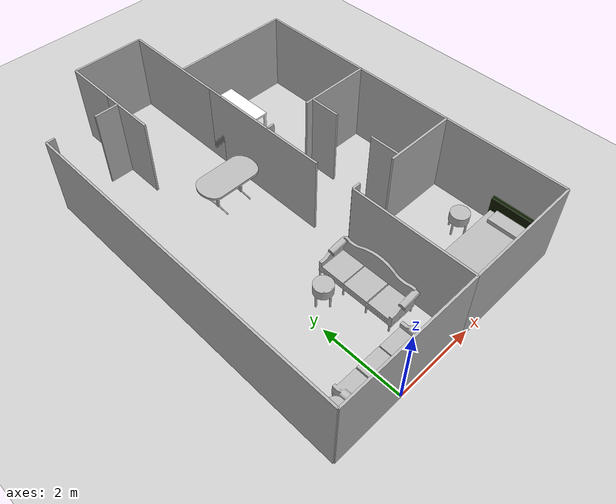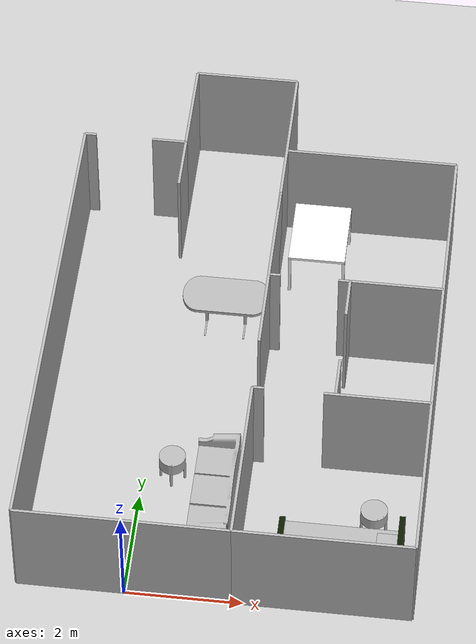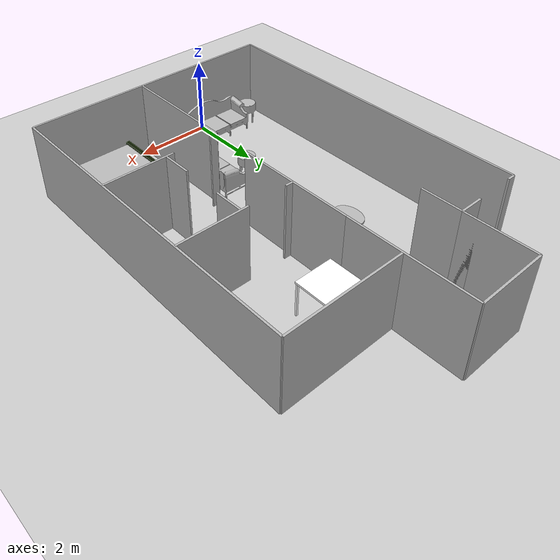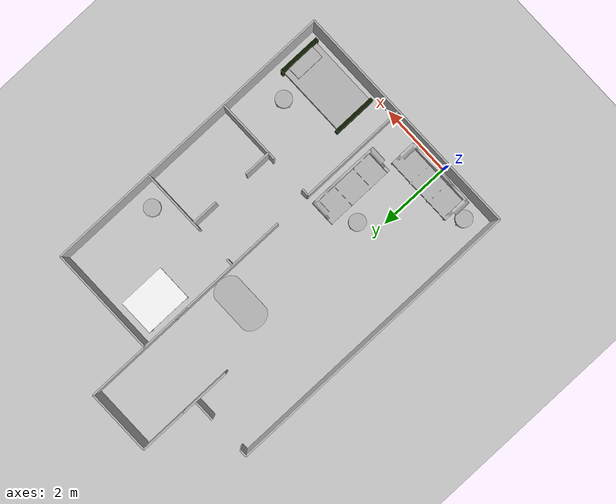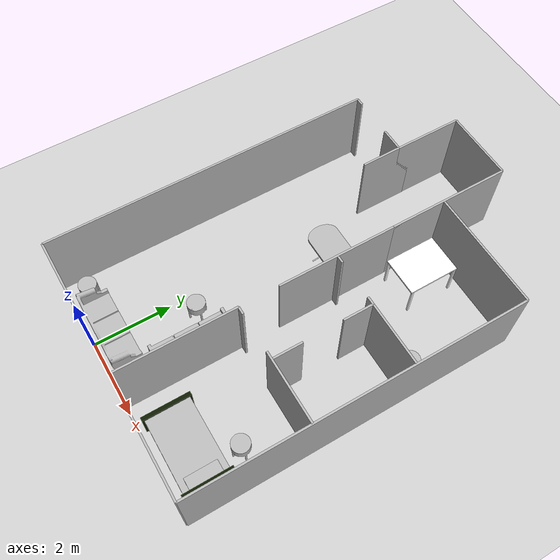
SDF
<sdf version="1.5">
 <world name="myworld">
  <include><uri>model://sun</uri></include>
  <include><uri>model://ground_plane</uri></include>
  <include><uri>model://hri_two_bedrooms</uri></include>
  <include><uri>model://hri_couch</uri><pose>1.25 2 0 0 0 3.1416</pose></include>
  <include><uri>model://hri_couch</uri><pose>0 0.5 0 0 0 1.5708</pose></include>
  <include><uri>model://hri_roundtable</uri><pose>0.5 2.5 0 0 0 0</pose></include>
  <include><uri>model://hri_roundtable</uri><pose>-1.25 0.5 0 0 0 0</pose></include>
  <include><uri>model://hri_dinnertable</uri><pose>1 6 0 0 0 1.5708</pose></include>
  <include><uri>model://hri_bed</uri><pose>3.5 0.75 0 0 0 0</pose></include>
  <include><uri>model://hri_roundtable</uri><pose>4 1.75 0 0 0 0</pose></include>
  <include><uri>model://hri_desk</uri><pose>2.5 7.5 0 0 0 1.5708</pose></include>
  <include><uri>model://hri_roundtable</uri><pose>4.25 6 0 0 0 0</pose></include>
 </world>
</sdf>

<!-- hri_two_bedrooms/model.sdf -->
<sdf version="1.4">
<model name="hri_two_bedrooms">
  <pose>0 0 0 0 0 0</pose>
  <static>true</static>

    <link name="wall1">
      <pose>0 0 1 0 0 0</pose>
      <inertial>
        <mass>1000.0</mass>
        <inertia> <!-- interias are tricky to compute -->
          <!-- http://answers.gazebosim.org/question/4372/the-inertia-matrix-explained/ -->
          <ixx>0.083</ixx>       <!-- for a box: ixx = 0.083 * mass * (y*y + z*z) -->
          <ixy>0.0</ixy>         <!-- for a box: ixy = 0 -->
          <ixz>0.0</ixz>         <!-- for a box: ixz = 0 -->
          <iyy>0.083</iyy>       <!-- for a box: iyy = 0.083 * mass * (x*x + z*z) -->
          <iyz>0.0</iyz>         <!-- for a box: iyz = 0 -->
          <izz>0.083</izz>       <!-- for a box: izz = 0.083 * mass * (x*x + y*y) -->
        </inertia>
      </inertial>
      <collision name="collision">
        <geometry>
          <box>
            <size>3.6    0.0500    2.0000</size>
          </box>
        </geometry>
      </collision>
      <visual name="visual">
        <geometry>
          <box>
            <size>3.6    0.0500    2.0000</size>
          </box>
        </geometry>
      </visual>
    </link>

    <link name="wall2">
      <pose>-1.8 4.2 1 0 0 0</pose>
      <inertial>
        <mass>1000.0</mass>
        <inertia> <!-- interias are tricky to compute -->
          <!-- http://answers.gazebosim.org/question/4372/the-inertia-matrix-explained/ -->
          <ixx>0.083</ixx>       <!-- for a box: ixx = 0.083 * mass * (y*y + z*z) -->
          <ixy>0.0</ixy>         <!-- for a box: ixy = 0 -->
          <ixz>0.0</ixz>         <!-- for a box: ixz = 0 -->
          <iyy>0.083</iyy>       <!-- for a box: iyy = 0.083 * mass * (x*x + z*z) -->
          <iyz>0.0</iyz>         <!-- for a box: iyz = 0 -->
          <izz>0.083</izz>       <!-- for a box: izz = 0.083 * mass * (x*x + y*y) -->
        </inertia>
      </inertial>
      <collision name="collision">
        <geometry>
          <box>
            <size>0.0500    8.4    2.0000</size>
          </box>
        </geometry>
      </collision>
      <visual name="visual">
        <geometry>
          <box>
            <size>0.0500    8.4    2.0000</size>
          </box>
        </geometry>
      </visual>
    </link>

    <link name="wall3">
      <pose>-1.7 8.4 1 0 0 0</pose>
      <inertial>
        <mass>1000.0</mass>
        <inertia> <!-- interias are tricky to compute -->
          <!-- http://answers.gazebosim.org/question/4372/the-inertia-matrix-explained/ -->
          <ixx>0.083</ixx>       <!-- for a box: ixx = 0.083 * mass * (y*y + z*z) -->
          <ixy>0.0</ixy>         <!-- for a box: ixy = 0 -->
          <ixz>0.0</ixz>         <!-- for a box: ixz = 0 -->
          <iyy>0.083</iyy>       <!-- for a box: iyy = 0.083 * mass * (x*x + z*z) -->
          <iyz>0.0</iyz>         <!-- for a box: iyz = 0 -->
          <izz>0.083</izz>       <!-- for a box: izz = 0.083 * mass * (x*x + y*y) -->
        </inertia>
      </inertial>
      <collision name="collision">
        <geometry>
          <box>
            <size>0.2    0.0500    2.0000</size>
          </box>
        </geometry>
      </collision>
      <visual name="visual">
        <geometry>
          <box>
            <size>0.2    0.0500    2.0000</size>
          </box>
        </geometry>
      </visual>
    </link>

    <link name="wall4">
      <pose>-0.3 8.4 1 0 0 0</pose>
      <inertial>
        <mass>1000.0</mass>
        <inertia> <!-- interias are tricky to compute -->
          <!-- http://answers.gazebosim.org/question/4372/the-inertia-matrix-explained/ -->
          <ixx>0.083</ixx>       <!-- for a box: ixx = 0.083 * mass * (y*y + z*z) -->
          <ixy>0.0</ixy>         <!-- for a box: ixy = 0 -->
          <ixz>0.0</ixz>         <!-- for a box: ixz = 0 -->
          <iyy>0.083</iyy>       <!-- for a box: iyy = 0.083 * mass * (x*x + z*z) -->
          <iyz>0.0</iyz>         <!-- for a box: iyz = 0 -->
          <izz>0.083</izz>       <!-- for a box: izz = 0.083 * mass * (x*x + y*y) -->
        </inertia>
      </inertial>
      <collision name="collision">
        <geometry>
          <box>
            <size>0.6    0.0500    2.0000</size>
          </box>
        </geometry>
      </collision>
      <visual name="visual">
        <geometry>
          <box>
            <size>0.6    0.0500    2.0000</size>
          </box>
        </geometry>
      </visual>
    </link>

    <link name="wall5">
      <pose>0 9.25 1 0 0 0</pose>
      <inertial>
        <mass>1000.0</mass>
        <inertia> <!-- interias are tricky to compute -->
          <!-- http://answers.gazebosim.org/question/4372/the-inertia-matrix-explained/ -->
          <ixx>0.083</ixx>       <!-- for a box: ixx = 0.083 * mass * (y*y + z*z) -->
          <ixy>0.0</ixy>         <!-- for a box: ixy = 0 -->
          <ixz>0.0</ixz>         <!-- for a box: ixz = 0 -->
          <iyy>0.083</iyy>       <!-- for a box: iyy = 0.083 * mass * (x*x + z*z) -->
          <iyz>0.0</iyz>         <!-- for a box: iyz = 0 -->
          <izz>0.083</izz>       <!-- for a box: izz = 0.083 * mass * (x*x + y*y) -->
        </inertia>
      </inertial>
      <collision name="collision">
        <geometry>
          <box>
            <size>0.0500    1.7    2.0000</size>
          </box>
        </geometry>
      </collision>
      <visual name="visual">
        <geometry>
          <box>
            <size>0.0500    1.7    2.0000</size>
          </box>
        </geometry>
      </visual>
    </link>

    <link name="wall6">
      <pose>0.9 10.1 1 0 0 0</pose>
      <inertial>
        <mass>1000.0</mass>
        <inertia> <!-- interias are tricky to compute -->
          <!-- http://answers.gazebosim.org/question/4372/the-inertia-matrix-explained/ -->
          <ixx>0.083</ixx>       <!-- for a box: ixx = 0.083 * mass * (y*y + z*z) -->
          <ixy>0.0</ixy>         <!-- for a box: ixy = 0 -->
          <ixz>0.0</ixz>         <!-- for a box: ixz = 0 -->
          <iyy>0.083</iyy>       <!-- for a box: iyy = 0.083 * mass * (x*x + z*z) -->
          <iyz>0.0</iyz>         <!-- for a box: iyz = 0 -->
          <izz>0.083</izz>       <!-- for a box: izz = 0.083 * mass * (x*x + y*y) -->
        </inertia>
      </inertial>
      <collision name="collision">
        <geometry>
          <box>
            <size>1.8    0.0500    2.0000</size>
          </box>
        </geometry>
      </collision>
      <visual name="visual">
        <geometry>
          <box>
            <size>1.8    0.0500    2.0000</size>
          </box>
        </geometry>
      </visual>
    </link>

    <link name="wall7">
      <pose>1.8 8.55 1 0 0 0</pose>
      <inertial>
        <mass>1000.0</mass>
        <inertia> <!-- interias are tricky to compute -->
          <!-- http://answers.gazebosim.org/question/4372/the-inertia-matrix-explained/ -->
          <ixx>0.083</ixx>       <!-- for a box: ixx = 0.083 * mass * (y*y + z*z) -->
          <ixy>0.0</ixy>         <!-- for a box: ixy = 0 -->
          <ixz>0.0</ixz>         <!-- for a box: ixz = 0 -->
          <iyy>0.083</iyy>       <!-- for a box: iyy = 0.083 * mass * (x*x + z*z) -->
          <iyz>0.0</iyz>         <!-- for a box: iyz = 0 -->
          <izz>0.083</izz>       <!-- for a box: izz = 0.083 * mass * (x*x + y*y) -->
        </inertia>
      </inertial>
      <collision name="collision">
        <geometry>
          <box>
            <size>0.0500    3.1    2.0000</size>
          </box>
        </geometry>
      </collision>
      <visual name="visual">
        <geometry>
          <box>
            <size>0.0500    3.1    2.0000</size>
          </box>
        </geometry>
      </visual>
    </link>

    <link name="wall8">
      <pose>3.3 8.4 1 0 0 0</pose>
      <inertial>
        <mass>1000.0</mass>
        <inertia> <!-- interias are tricky to compute -->
          <!-- http://answers.gazebosim.org/question/4372/the-inertia-matrix-explained/ -->
          <ixx>0.083</ixx>       <!-- for a box: ixx = 0.083 * mass * (y*y + z*z) -->
          <ixy>0.0</ixy>         <!-- for a box: ixy = 0 -->
          <ixz>0.0</ixz>         <!-- for a box: ixz = 0 -->
          <iyy>0.083</iyy>       <!-- for a box: iyy = 0.083 * mass * (x*x + z*z) -->
          <iyz>0.0</iyz>         <!-- for a box: iyz = 0 -->
          <izz>0.083</izz>       <!-- for a box: izz = 0.083 * mass * (x*x + y*y) -->
        </inertia>
      </inertial>
      <collision name="collision">
        <geometry>
          <box>
            <size>3.0    0.0500    2.0000</size>
          </box>
        </geometry>
      </collision>
      <visual name="visual">
        <geometry>
          <box>
            <size>3.0    0.0500    2.0000</size>
          </box>
        </geometry>
      </visual>
    </link>

    <link name="wall9">
      <pose>4.8 4.2 1 0 0 0</pose>
      <inertial>
        <mass>1000.0</mass>
        <inertia> <!-- interias are tricky to compute -->
          <!-- http://answers.gazebosim.org/question/4372/the-inertia-matrix-explained/ -->
          <ixx>0.083</ixx>       <!-- for a box: ixx = 0.083 * mass * (y*y + z*z) -->
          <ixy>0.0</ixy>         <!-- for a box: ixy = 0 -->
          <ixz>0.0</ixz>         <!-- for a box: ixz = 0 -->
          <iyy>0.083</iyy>       <!-- for a box: iyy = 0.083 * mass * (x*x + z*z) -->
          <iyz>0.0</iyz>         <!-- for a box: iyz = 0 -->
          <izz>0.083</izz>       <!-- for a box: izz = 0.083 * mass * (x*x + y*y) -->
        </inertia>
      </inertial>
      <collision name="collision">
        <geometry>
          <box>
            <size>0.0500    8.4    2.0000</size>
          </box>
        </geometry>
      </collision>
      <visual name="visual">
        <geometry>
          <box>
            <size>0.0500    8.4    2.0000</size>
          </box>
        </geometry>
      </visual>
    </link>

    <link name="wall10">
      <pose>3.3 0 1 0 0 0</pose>
      <inertial>
        <mass>1000.0</mass>
        <inertia> <!-- interias are tricky to compute -->
          <!-- http://answers.gazebosim.org/question/4372/the-inertia-matrix-explained/ -->
          <ixx>0.083</ixx>       <!-- for a box: ixx = 0.083 * mass * (y*y + z*z) -->
          <ixy>0.0</ixy>         <!-- for a box: ixy = 0 -->
          <ixz>0.0</ixz>         <!-- for a box: ixz = 0 -->
          <iyy>0.083</iyy>       <!-- for a box: iyy = 0.083 * mass * (x*x + z*z) -->
          <iyz>0.0</iyz>         <!-- for a box: iyz = 0 -->
          <izz>0.083</izz>       <!-- for a box: izz = 0.083 * mass * (x*x + y*y) -->
        </inertia>
      </inertial>
      <collision name="collision">
        <geometry>
          <box>
            <size>3.0    0.0500    2.0000</size>
          </box>
        </geometry>
      </collision>
      <visual name="visual">
        <geometry>
          <box>
            <size>3.0    0.0500    2.0000</size>
          </box>
        </geometry>
      </visual>
    </link>

    <link name="wall11">
      <pose>1.8 1.5 1 0 0 0</pose>
      <inertial>
        <mass>1000.0</mass>
        <inertia> <!-- interias are tricky to compute -->
          <!-- http://answers.gazebosim.org/question/4372/the-inertia-matrix-explained/ -->
          <ixx>0.083</ixx>       <!-- for a box: ixx = 0.083 * mass * (y*y + z*z) -->
          <ixy>0.0</ixy>         <!-- for a box: ixy = 0 -->
          <ixz>0.0</ixz>         <!-- for a box: ixz = 0 -->
          <iyy>0.083</iyy>       <!-- for a box: iyy = 0.083 * mass * (x*x + z*z) -->
          <iyz>0.0</iyz>         <!-- for a box: iyz = 0 -->
          <izz>0.083</izz>       <!-- for a box: izz = 0.083 * mass * (x*x + y*y) -->
        </inertia>
      </inertial>
      <collision name="collision">
        <geometry>
          <box>
            <size>0.0500    3.0    2.0000</size>
          </box>
        </geometry>
      </collision>
      <visual name="visual">
        <geometry>
          <box>
            <size>0.0500    3.0    2.0000</size>
          </box>
        </geometry>
      </visual>
    </link>

    <link name="wall12">
      <pose>1.8 5.7 1 0 0 0</pose>
      <inertial>
        <mass>1000.0</mass>
        <inertia> <!-- interias are tricky to compute -->
          <!-- http://answers.gazebosim.org/question/4372/the-inertia-matrix-explained/ -->
          <ixx>0.083</ixx>       <!-- for a box: ixx = 0.083 * mass * (y*y + z*z) -->
          <ixy>0.0</ixy>         <!-- for a box: ixy = 0 -->
          <ixz>0.0</ixz>         <!-- for a box: ixz = 0 -->
          <iyy>0.083</iyy>       <!-- for a box: iyy = 0.083 * mass * (x*x + z*z) -->
          <iyz>0.0</iyz>         <!-- for a box: iyz = 0 -->
          <izz>0.083</izz>       <!-- for a box: izz = 0.083 * mass * (x*x + y*y) -->
        </inertia>
      </inertial>
      <collision name="collision">
        <geometry>
          <box>
            <size>0.0500    3.4    2.0000</size>
          </box>
        </geometry>
      </collision>
      <visual name="visual">
        <geometry>
          <box>
            <size>0.0500    3.4    2.0000</size>
          </box>
        </geometry>
      </visual>
    </link>

    <link name="wall13">
      <pose>1.9 5.5 1 0 0 0</pose>
      <inertial>
        <mass>1000.0</mass>
        <inertia> <!-- interias are tricky to compute -->
          <!-- http://answers.gazebosim.org/question/4372/the-inertia-matrix-explained/ -->
          <ixx>0.083</ixx>       <!-- for a box: ixx = 0.083 * mass * (y*y + z*z) -->
          <ixy>0.0</ixy>         <!-- for a box: ixy = 0 -->
          <ixz>0.0</ixz>         <!-- for a box: ixz = 0 -->
          <iyy>0.083</iyy>       <!-- for a box: iyy = 0.083 * mass * (x*x + z*z) -->
          <iyz>0.0</iyz>         <!-- for a box: iyz = 0 -->
          <izz>0.083</izz>       <!-- for a box: izz = 0.083 * mass * (x*x + y*y) -->
        </inertia>
      </inertial>
      <collision name="collision">
        <geometry>
          <box>
            <size>0.2    0.0500    2.0000</size>
          </box>
        </geometry>
      </collision>
      <visual name="visual">
        <geometry>
          <box>
            <size>0.2    0.0500    2.0000</size>
          </box>
        </geometry>
      </visual>
    </link>

    <link name="wall14">
      <pose>3.9 5.5 1 0 0 0</pose>
      <inertial>
        <mass>1000.0</mass>
        <inertia> <!-- interias are tricky to compute -->
          <!-- http://answers.gazebosim.org/question/4372/the-inertia-matrix-explained/ -->
          <ixx>0.083</ixx>       <!-- for a box: ixx = 0.083 * mass * (y*y + z*z) -->
          <ixy>0.0</ixy>         <!-- for a box: ixy = 0 -->
          <ixz>0.0</ixz>         <!-- for a box: ixz = 0 -->
          <iyy>0.083</iyy>       <!-- for a box: iyy = 0.083 * mass * (x*x + z*z) -->
          <iyz>0.0</iyz>         <!-- for a box: iyz = 0 -->
          <izz>0.083</izz>       <!-- for a box: izz = 0.083 * mass * (x*x + y*y) -->
        </inertia>
      </inertial>
      <collision name="collision">
        <geometry>
          <box>
            <size>1.8    0.0500    2.0000</size>
          </box>
        </geometry>
      </collision>
      <visual name="visual">
        <geometry>
          <box>
            <size>1.8    0.0500    2.0000</size>
          </box>
        </geometry>
      </visual>
    </link>

    <link name="wall15">
      <pose>1.9 3 1 0 0 0</pose>
      <inertial>
        <mass>1000.0</mass>
        <inertia> <!-- interias are tricky to compute -->
          <!-- http://answers.gazebosim.org/question/4372/the-inertia-matrix-explained/ -->
          <ixx>0.083</ixx>       <!-- for a box: ixx = 0.083 * mass * (y*y + z*z) -->
          <ixy>0.0</ixy>         <!-- for a box: ixy = 0 -->
          <ixz>0.0</ixz>         <!-- for a box: ixz = 0 -->
          <iyy>0.083</iyy>       <!-- for a box: iyy = 0.083 * mass * (x*x + z*z) -->
          <iyz>0.0</iyz>         <!-- for a box: iyz = 0 -->
          <izz>0.083</izz>       <!-- for a box: izz = 0.083 * mass * (x*x + y*y) -->
        </inertia>
      </inertial>
      <collision name="collision">
        <geometry>
          <box>
            <size>0.2    0.0500    2.0000</size>
          </box>
        </geometry>
      </collision>
      <visual name="visual">
        <geometry>
          <box>
            <size>0.2    0.0500    2.0000</size>
          </box>
        </geometry>
      </visual>
    </link>

    <link name="wall16">
      <pose>3.9 3 1 0 0 0</pose>
      <inertial>
        <mass>1000.0</mass>
        <inertia> <!-- interias are tricky to compute -->
          <!-- http://answers.gazebosim.org/question/4372/the-inertia-matrix-explained/ -->
          <ixx>0.083</ixx>       <!-- for a box: ixx = 0.083 * mass * (y*y + z*z) -->
          <ixy>0.0</ixy>         <!-- for a box: ixy = 0 -->
          <ixz>0.0</ixz>         <!-- for a box: ixz = 0 -->
          <iyy>0.083</iyy>       <!-- for a box: iyy = 0.083 * mass * (x*x + z*z) -->
          <iyz>0.0</iyz>         <!-- for a box: iyz = 0 -->
          <izz>0.083</izz>       <!-- for a box: izz = 0.083 * mass * (x*x + y*y) -->
        </inertia>
      </inertial>
      <collision name="collision">
        <geometry>
          <box>
            <size>1.8    0.0500    2.0000</size>
          </box>
        </geometry>
      </collision>
      <visual name="visual">
        <geometry>
          <box>
            <size>1.8    0.0500    2.0000</size>
          </box>
        </geometry>
      </visual>
    </link>

    <link name="wall17">
      <pose>3.9 3 1 0 0 0</pose>
      <inertial>
        <mass>1000.0</mass>
        <inertia> <!-- interias are tricky to compute -->
          <!-- http://answers.gazebosim.org/question/4372/the-inertia-matrix-explained/ -->
          <ixx>0.083</ixx>       <!-- for a box: ixx = 0.083 * mass * (y*y + z*z) -->
          <ixy>0.0</ixy>         <!-- for a box: ixy = 0 -->
          <ixz>0.0</ixz>         <!-- for a box: ixz = 0 -->
          <iyy>0.083</iyy>       <!-- for a box: iyy = 0.083 * mass * (x*x + z*z) -->
          <iyz>0.0</iyz>         <!-- for a box: iyz = 0 -->
          <izz>0.083</izz>       <!-- for a box: izz = 0.083 * mass * (x*x + y*y) -->
        </inertia>
      </inertial>
      <collision name="collision">
        <geometry>
          <box>
            <size>1.8    0.0500    2.0000</size>
          </box>
        </geometry>
      </collision>
      <visual name="visual">
        <geometry>
          <box>
            <size>1.8    0.0500    2.0000</size>
          </box>
        </geometry>
      </visual>
    </link>

    <link name="wall18">
      <pose>3.2 5.125 1 0 0 0</pose>
      <inertial>
        <mass>1000.0</mass>
        <inertia> <!-- interias are tricky to compute -->
          <!-- http://answers.gazebosim.org/question/4372/the-inertia-matrix-explained/ -->
          <ixx>0.083</ixx>       <!-- for a box: ixx = 0.083 * mass * (y*y + z*z) -->
          <ixy>0.0</ixy>         <!-- for a box: ixy = 0 -->
          <ixz>0.0</ixz>         <!-- for a box: ixz = 0 -->
          <iyy>0.083</iyy>       <!-- for a box: iyy = 0.083 * mass * (x*x + z*z) -->
          <iyz>0.0</iyz>         <!-- for a box: iyz = 0 -->
          <izz>0.083</izz>       <!-- for a box: izz = 0.083 * mass * (x*x + y*y) -->
        </inertia>
      </inertial>
      <collision name="collision">
        <geometry>
          <box>
            <size>0.0500    0.75    2.0000</size>
          </box>
        </geometry>
      </collision>
      <visual name="visual">
        <geometry>
          <box>
            <size>0.0500    0.75    2.0000</size>
          </box>
        </geometry>
      </visual>
    </link>

    <link name="wall19">
      <pose>3.2 3.375 1 0 0 0</pose>
      <inertial>
        <mass>1000.0</mass>
        <inertia> <!-- interias are tricky to compute -->
          <!-- http://answers.gazebosim.org/question/4372/the-inertia-matrix-explained/ -->
          <ixx>0.083</ixx>       <!-- for a box: ixx = 0.083 * mass * (y*y + z*z) -->
          <ixy>0.0</ixy>         <!-- for a box: ixy = 0 -->
          <ixz>0.0</ixz>         <!-- for a box: ixz = 0 -->
          <iyy>0.083</iyy>       <!-- for a box: iyy = 0.083 * mass * (x*x + z*z) -->
          <iyz>0.0</iyz>         <!-- for a box: iyz = 0 -->
          <izz>0.083</izz>       <!-- for a box: izz = 0.083 * mass * (x*x + y*y) -->
        </inertia>
      </inertial>
      <collision name="collision">
        <geometry>
          <box>
            <size>0.0500    0.75    2.0000</size>
          </box>
        </geometry>
      </collision>
      <visual name="visual">
        <geometry>
          <box>
            <size>0.0500    0.75    2.0000</size>
          </box>
        </geometry>
      </visual>
    </link>

    <link name="wall20">
      <pose>0 8.1 1 0 0 0</pose>
      <inertial>
        <mass>1000.0</mass>
        <inertia> <!-- interias are tricky to compute -->
          <!-- http://answers.gazebosim.org/question/4372/the-inertia-matrix-explained/ -->
          <ixx>0.083</ixx>       <!-- for a box: ixx = 0.083 * mass * (y*y + z*z) -->
          <ixy>0.0</ixy>         <!-- for a box: ixy = 0 -->
          <ixz>0.0</ixz>         <!-- for a box: ixz = 0 -->
          <iyy>0.083</iyy>       <!-- for a box: iyy = 0.083 * mass * (x*x + z*z) -->
          <iyz>0.0</iyz>         <!-- for a box: iyz = 0 -->
          <izz>0.083</izz>       <!-- for a box: izz = 0.083 * mass * (x*x + y*y) -->
        </inertia>
      </inertial>
      <collision name="collision">
        <geometry>
          <box>
            <size>0.0500    1.4    2.0000</size>
          </box>
        </geometry>
      </collision>
      <visual name="visual">
        <geometry>
          <box>
            <size>0.0500    1.4    2.0000</size>
          </box>
        </geometry>
      </visual>
    </link>

  </model>
</sdf>

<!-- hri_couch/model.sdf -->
<sdf version="1.4">
<model name="couch">
  <pose>0 0 0 0 0 0</pose>
  <static>true</static>
    <link name="link">
      <pose>0 0 0 0 0 0</pose>
      <inertial>
        <mass>1.0</mass>
        <inertia> <!-- interias are tricky to compute -->
          <!-- http://answers.gazebosim.org/question/4372/the-inertia-matrix-explained/ -->
          <ixx>0.083</ixx>       <!-- for a box: ixx = 0.083 * mass * (y*y + z*z) -->
          <ixy>0.0</ixy>         <!-- for a box: ixy = 0 -->
          <ixz>0.0</ixz>         <!-- for a box: ixz = 0 -->
          <iyy>0.083</iyy>       <!-- for a box: iyy = 0.083 * mass * (x*x + z*z) -->
          <iyz>0.0</iyz>         <!-- for a box: iyz = 0 -->
          <izz>0.083</izz>       <!-- for a box: izz = 0.083 * mass * (x*x + y*y) -->
        </inertia>
      </inertial>
      <collision name="collision">
	<pose>0 0 0 1.5708 0 0</pose>
        <geometry>
	  <mesh>
	    <uri>model://hri_couch/meshes/couch.dae</uri>
	    <scale>1 1 1</scale>
	  </mesh>
        </geometry>
      </collision>
      <visual name="visual">
	<pose>0 0 0 1.5708 0 0</pose>
        <geometry>
	  <mesh>
	    <uri>model://hri_couch/meshes/couch.dae</uri>
	    <scale>1 1 1</scale>
	  </mesh>
        </geometry>
      </visual>
    </link>
  </model>
</sdf>

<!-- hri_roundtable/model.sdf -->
<sdf version="1.4">
<model name="round table">
  <pose>0 0 0 0 0 0</pose>
  <static>true</static>
    <link name="link">
      <pose>0 0 0 0 0 0</pose>
      <inertial>
        <mass>1.0</mass>
        <inertia> <!-- interias are tricky to compute -->
          <!-- http://answers.gazebosim.org/question/4372/the-inertia-matrix-explained/ -->
          <ixx>0.083</ixx>       <!-- for a box: ixx = 0.083 * mass * (y*y + z*z) -->
          <ixy>0.0</ixy>         <!-- for a box: ixy = 0 -->
          <ixz>0.0</ixz>         <!-- for a box: ixz = 0 -->
          <iyy>0.083</iyy>       <!-- for a box: iyy = 0.083 * mass * (x*x + z*z) -->
          <iyz>0.0</iyz>         <!-- for a box: iyz = 0 -->
          <izz>0.083</izz>       <!-- for a box: izz = 0.083 * mass * (x*x + y*y) -->
        </inertia>
      </inertial>
      <collision name="collision">
	<pose>0 0 0 1.5708 0 0</pose>
        <geometry>
	  <mesh>
	    <uri>model://hri_roundtable/meshes/roundtable.dae</uri>
	    <scale>1 1 1</scale>
	  </mesh>
        </geometry>
      </collision>
      <visual name="visual">
	<pose>0 0 0 1.5708 0 0</pose>
        <geometry>
	  <mesh>
	    <uri>model://hri_roundtable/meshes/roundtable.dae</uri>
	    <scale>1 1 1</scale>
	  </mesh>
        </geometry>
      </visual>
    </link>
  </model>
</sdf>

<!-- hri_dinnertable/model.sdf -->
<sdf version="1.4">
<model name="dinner table">
  <pose>0 0 0 0 0 0</pose>
  <static>true</static>
    <link name="link">
      <pose>0 0 0 0 0 0</pose>
      <inertial>
        <mass>1.0</mass>
        <inertia> <!-- interias are tricky to compute -->
          <!-- http://answers.gazebosim.org/question/4372/the-inertia-matrix-explained/ -->
          <ixx>0.083</ixx>       <!-- for a box: ixx = 0.083 * mass * (y*y + z*z) -->
          <ixy>0.0</ixy>         <!-- for a box: ixy = 0 -->
          <ixz>0.0</ixz>         <!-- for a box: ixz = 0 -->
          <iyy>0.083</iyy>       <!-- for a box: iyy = 0.083 * mass * (x*x + z*z) -->
          <iyz>0.0</iyz>         <!-- for a box: iyz = 0 -->
          <izz>0.083</izz>       <!-- for a box: izz = 0.083 * mass * (x*x + y*y) -->
        </inertia>
      </inertial>
      <collision name="collision">
	<pose>0 0 0 1.5708 0 0</pose>
        <geometry>
	  <mesh>
	    <uri>model://hri_dinnertable/meshes/dinnertable.dae</uri>
	    <scale>1 1 1</scale>
	  </mesh>
        </geometry>
      </collision>
      <visual name="visual">
	<pose>0 0 0 1.5708 0 0</pose>
        <geometry>
	  <mesh>
	    <uri>model://hri_dinnertable/meshes/dinnertable.dae</uri>
	    <scale>1 1 1</scale>
	  </mesh>
        </geometry>
      </visual>
    </link>
  </model>
</sdf>

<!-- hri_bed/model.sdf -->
<sdf version="1.5">
<model name="bed">
  <static>true</static>
    <link name="link">
      <pose>0 0 0.6 0 0 0</pose>
      <inertial>
        <mass>1.0</mass>
        <inertia> <!-- interias are tricky to compute -->
          <!-- http://answers.gazebosim.org/question/4372/the-inertia-matrix-explained/ -->
          <ixx>0.083</ixx>       <!-- for a box: ixx = 0.083 * mass * (y*y + z*z) -->
          <ixy>0.0</ixy>         <!-- for a box: ixy = 0 -->
          <ixz>0.0</ixz>         <!-- for a box: ixz = 0 -->
          <iyy>0.083</iyy>       <!-- for a box: iyy = 0.083 * mass * (x*x + z*z) -->
          <iyz>0.0</iyz>         <!-- for a box: iyz = 0 -->
          <izz>0.083</izz>       <!-- for a box: izz = 0.083 * mass * (x*x + y*y) -->
        </inertia>
      </inertial>
      <collision name="collision">
        <geometry>
          <box>
            <size>2.0    1.1    0.10</size>
          </box>
        </geometry>
      </collision>
      <visual name="visual">
        <geometry>
          <box>
            <size>2.0    1.1    0.10</size>
          </box>
        </geometry>
      </visual>
    </link>

    <link name="link2">
      <pose>0 0 0.45 0 0 0</pose>
      <inertial>
        <mass>1.0</mass>
        <inertia> <!-- interias are tricky to compute -->
          <!-- http://answers.gazebosim.org/question/4372/the-inertia-matrix-explained/ -->
          <ixx>0.083</ixx>       <!-- for a box: ixx = 0.083 * mass * (y*y + z*z) -->
          <ixy>0.0</ixy>         <!-- for a box: ixy = 0 -->
          <ixz>0.0</ixz>         <!-- for a box: ixz = 0 -->
          <iyy>0.083</iyy>       <!-- for a box: iyy = 0.083 * mass * (x*x + z*z) -->
          <iyz>0.0</iyz>         <!-- for a box: iyz = 0 -->
          <izz>0.083</izz>       <!-- for a box: izz = 0.083 * mass * (x*x + y*y) -->
        </inertia>
      </inertial>
      <collision name="collision">
        <geometry>
          <box>
            <size>2.0    1.1    0.20</size>
          </box>
        </geometry>
      </collision>
      <visual name="visual">
        <geometry>
          <box>
            <size>2.0    1.1    0.20</size>
          </box>
        </geometry>
	<material>
	  <ambient>0.25 0 0 1</ambient>
	  <diffuse>0.05 0.1 0 1</diffuse>
	  <specular>0.1 0.1 0.1 1</specular>
	  <emissive>0 0 0 0</emissive>
	</material>
      </visual>
    </link>

    <link name="link3">
      <pose>1 0 0.5 0 0 0</pose>
      <inertial>
        <mass>1.0</mass>
        <inertia> <!-- interias are tricky to compute -->
          <!-- http://answers.gazebosim.org/question/4372/the-inertia-matrix-explained/ -->
          <ixx>0.083</ixx>       <!-- for a box: ixx = 0.083 * mass * (y*y + z*z) -->
          <ixy>0.0</ixy>         <!-- for a box: ixy = 0 -->
          <ixz>0.0</ixz>         <!-- for a box: ixz = 0 -->
          <iyy>0.083</iyy>       <!-- for a box: iyy = 0.083 * mass * (x*x + z*z) -->
          <iyz>0.0</iyz>         <!-- for a box: iyz = 0 -->
          <izz>0.083</izz>       <!-- for a box: izz = 0.083 * mass * (x*x + y*y) -->
        </inertia>
      </inertial>
      <collision name="collision">
        <geometry>
          <box>
            <size>0.1    1.2    1.0</size>
          </box>
        </geometry>
      </collision>
      <visual name="visual">
        <geometry>
          <box>
            <size>0.1    1.2    1.0</size>
          </box>
        </geometry>
	<material>
	  <ambient>0.25 0 0 1</ambient>
	  <diffuse>0.05 0.1 0 1</diffuse>
	  <specular>0.1 0.1 0.1 1</specular>
	  <emissive>0 0 0 0</emissive>
	</material>
      </visual>
    </link>

    <link name="link4">
      <pose>-1 0 0.35 0 0 0</pose>
      <inertial>
        <mass>1.0</mass>
        <inertia> <!-- interias are tricky to compute -->
          <!-- http://answers.gazebosim.org/question/4372/the-inertia-matrix-explained/ -->
          <ixx>0.083</ixx>       <!-- for a box: ixx = 0.083 * mass * (y*y + z*z) -->
          <ixy>0.0</ixy>         <!-- for a box: ixy = 0 -->
          <ixz>0.0</ixz>         <!-- for a box: ixz = 0 -->
          <iyy>0.083</iyy>       <!-- for a box: iyy = 0.083 * mass * (x*x + z*z) -->
          <iyz>0.0</iyz>         <!-- for a box: iyz = 0 -->
          <izz>0.083</izz>       <!-- for a box: izz = 0.083 * mass * (x*x + y*y) -->
        </inertia>
      </inertial>
      <collision name="collision">
        <geometry>
          <box>
            <size>0.1    1.2    0.70</size>
          </box>
        </geometry>
      </collision>
      <visual name="visual">
        <geometry>
          <box>
            <size>0.1    1.2    0.70</size>
          </box>
        </geometry>
	<material>
	  <ambient>0.25 0 0 1</ambient>
	  <diffuse>0.05 0.1 0 1</diffuse>
	  <specular>0.1 0.1 0.1 1</specular>
	  <emissive>0 0 0 0</emissive>
	</material>
      </visual>
    </link>

    <link name="link5">
      <pose>0.80 0 0.7 0 0 0</pose>
      <inertial>
        <mass>1.0</mass>
        <inertia> <!-- interias are tricky to compute -->
          <!-- http://answers.gazebosim.org/question/4372/the-inertia-matrix-explained/ -->
          <ixx>0.083</ixx>       <!-- for a box: ixx = 0.083 * mass * (y*y + z*z) -->
          <ixy>0.0</ixy>         <!-- for a box: ixy = 0 -->
          <ixz>0.0</ixz>         <!-- for a box: ixz = 0 -->
          <iyy>0.083</iyy>       <!-- for a box: iyy = 0.083 * mass * (x*x + z*z) -->
          <iyz>0.0</iyz>         <!-- for a box: iyz = 0 -->
          <izz>0.083</izz>       <!-- for a box: izz = 0.083 * mass * (x*x + y*y) -->
        </inertia>
      </inertial>
      <collision name="collision">
        <geometry>
          <box>
            <size>0.4    0.8    0.10</size>
          </box>
        </geometry>
      </collision>
      <visual name="visual">
        <geometry>
          <box>
            <size>0.4    0.8    0.10</size>
          </box>
        </geometry>
      </visual>
    </link>

  </model>
</sdf>

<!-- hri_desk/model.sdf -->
<sdf version="1.4">
<model name="hri_desk">
  <pose>0 0 0 0 0 0</pose>
  <static>true</static>

    <link name="wall1">
      <pose>0 0 0.885 0 0 0</pose>
      <inertial>
        <mass>1000.0</mass>
        <inertia> <!-- interias are tricky to compute -->
          <!-- http://answers.gazebosim.org/question/4372/the-inertia-matrix-explained/ -->
          <ixx>0.083</ixx>       <!-- for a box: ixx = 0.083 * mass * (y*y + z*z) -->
          <ixy>0.0</ixy>         <!-- for a box: ixy = 0 -->
          <ixz>0.0</ixz>         <!-- for a box: ixz = 0 -->
          <iyy>0.083</iyy>       <!-- for a box: iyy = 0.083 * mass * (x*x + z*z) -->
          <iyz>0.0</iyz>         <!-- for a box: iyz = 0 -->
          <izz>0.083</izz>       <!-- for a box: izz = 0.083 * mass * (x*x + y*y) -->
        </inertia>
      </inertial>
      <collision name="collision">
        <geometry>
          <box>
            <size>1.3    1.0    0.05</size>
          </box>
        </geometry>
      </collision>
      <visual name="visual">
        <geometry>
          <box>
            <size>1.3    1.0    0.05</size>
          </box>
        </geometry>
	<material>
          <ambient>0.5 0.5 0.3 1</ambient>
          <diffuse>1 1 1 1</diffuse>
          <specular>0.1 0.1 0.1 1</specular>
          <emissive>0 0 0 0</emissive>
        </material>
      </visual>
    </link>

    <link name="wall2">
      <pose>0.6    0.475    0.43 0 0 0</pose>
      <inertial>
        <mass>1000.0</mass>
        <inertia> <!-- interias are tricky to compute -->
          <!-- http://answers.gazebosim.org/question/4372/the-inertia-matrix-explained/ -->
          <ixx>0.083</ixx>       <!-- for a box: ixx = 0.083 * mass * (y*y + z*z) -->
          <ixy>0.0</ixy>         <!-- for a box: ixy = 0 -->
          <ixz>0.0</ixz>         <!-- for a box: ixz = 0 -->
          <iyy>0.083</iyy>       <!-- for a box: iyy = 0.083 * mass * (x*x + z*z) -->
          <iyz>0.0</iyz>         <!-- for a box: iyz = 0 -->
          <izz>0.083</izz>       <!-- for a box: izz = 0.083 * mass * (x*x + y*y) -->
        </inertia>
      </inertial>
      <collision name="collision">
        <geometry>
          <box>
            <size>0.0500    0.0500    0.86</size>
          </box>
        </geometry>
      </collision>
      <visual name="visual">
        <geometry>
          <box>
            <size>0.0500    0.0500    0.86</size>
          </box>
        </geometry>
	<material>
          <ambient>1 1 0.5 1</ambient>
          <diffuse>1 1 1 1</diffuse>
          <specular>0.1 0.1 0.1 1</specular>
          <emissive>0 0 0 0</emissive>
        </material>
      </visual>
    </link>

    <link name="wall3">
      <pose>0.6    -0.475    0.43 0 0 0</pose>
      <inertial>
        <mass>1000.0</mass>
        <inertia> <!-- interias are tricky to compute -->
          <!-- http://answers.gazebosim.org/question/4372/the-inertia-matrix-explained/ -->
          <ixx>0.083</ixx>       <!-- for a box: ixx = 0.083 * mass * (y*y + z*z) -->
          <ixy>0.0</ixy>         <!-- for a box: ixy = 0 -->
          <ixz>0.0</ixz>         <!-- for a box: ixz = 0 -->
          <iyy>0.083</iyy>       <!-- for a box: iyy = 0.083 * mass * (x*x + z*z) -->
          <iyz>0.0</iyz>         <!-- for a box: iyz = 0 -->
          <izz>0.083</izz>       <!-- for a box: izz = 0.083 * mass * (x*x + y*y) -->
        </inertia>
      </inertial>
      <collision name="collision">
        <geometry>
          <box>
            <size>0.0500    0.0500    0.86</size>
          </box>
        </geometry>
      </collision>
      <visual name="visual">
        <geometry>
          <box>
            <size>0.0500    0.0500    0.86</size>
          </box>
        </geometry>
	<material>
          <ambient>1 1 0.5 1</ambient>
          <diffuse>1 1 1 1</diffuse>
          <specular>0.1 0.1 0.1 1</specular>
          <emissive>0 0 0 0</emissive>
        </material>
      </visual>
    </link>

    <link name="wall4">
      <pose>-0.6    -0.475    0.43 0 0 0</pose>
      <inertial>
        <mass>1000.0</mass>
        <inertia> <!-- interias are tricky to compute -->
          <!-- http://answers.gazebosim.org/question/4372/the-inertia-matrix-explained/ -->
          <ixx>0.083</ixx>       <!-- for a box: ixx = 0.083 * mass * (y*y + z*z) -->
          <ixy>0.0</ixy>         <!-- for a box: ixy = 0 -->
          <ixz>0.0</ixz>         <!-- for a box: ixz = 0 -->
          <iyy>0.083</iyy>       <!-- for a box: iyy = 0.083 * mass * (x*x + z*z) -->
          <iyz>0.0</iyz>         <!-- for a box: iyz = 0 -->
          <izz>0.083</izz>       <!-- for a box: izz = 0.083 * mass * (x*x + y*y) -->
        </inertia>
      </inertial>
      <collision name="collision">
        <geometry>
          <box>
            <size>0.0500    0.0500    0.86</size>
          </box>
        </geometry>
      </collision>
      <visual name="visual">
        <geometry>
          <box>
            <size>0.0500    0.0500    0.86</size>
          </box>
        </geometry>
	<material>
          <ambient>1 1 0.5 1</ambient>
          <diffuse>1 1 1 1</diffuse>
          <specular>0.1 0.1 0.1 1</specular>
          <emissive>0 0 0 0</emissive>
        </material>
      </visual>
    </link>

    <link name="wall5">
      <pose>-0.6    0.475    0.43 0 0 0</pose>
      <inertial>
        <mass>1000.0</mass>
        <inertia> <!-- interias are tricky to compute -->
          <!-- http://answers.gazebosim.org/question/4372/the-inertia-matrix-explained/ -->
          <ixx>0.083</ixx>       <!-- for a box: ixx = 0.083 * mass * (y*y + z*z) -->
          <ixy>0.0</ixy>         <!-- for a box: ixy = 0 -->
          <ixz>0.0</ixz>         <!-- for a box: ixz = 0 -->
          <iyy>0.083</iyy>       <!-- for a box: iyy = 0.083 * mass * (x*x + z*z) -->
          <iyz>0.0</iyz>         <!-- for a box: iyz = 0 -->
          <izz>0.083</izz>       <!-- for a box: izz = 0.083 * mass * (x*x + y*y) -->
        </inertia>
      </inertial>
      <collision name="collision">
        <geometry>
          <box>
            <size>0.0500    0.0500    0.86</size>
          </box>
        </geometry>
      </collision>
      <visual name="visual">
        <geometry>
          <box>
            <size>0.0500    0.0500    0.86</size>
          </box>
        </geometry>
	<material>
          <ambient>1 1 0.5 1</ambient>
          <diffuse>1 1 1 1</diffuse>
          <specular>0.1 0.1 0.1 1</specular>
          <emissive>0 0 0 0</emissive>
        </material>
      </visual>
    </link>

  </model>
</sdf>
